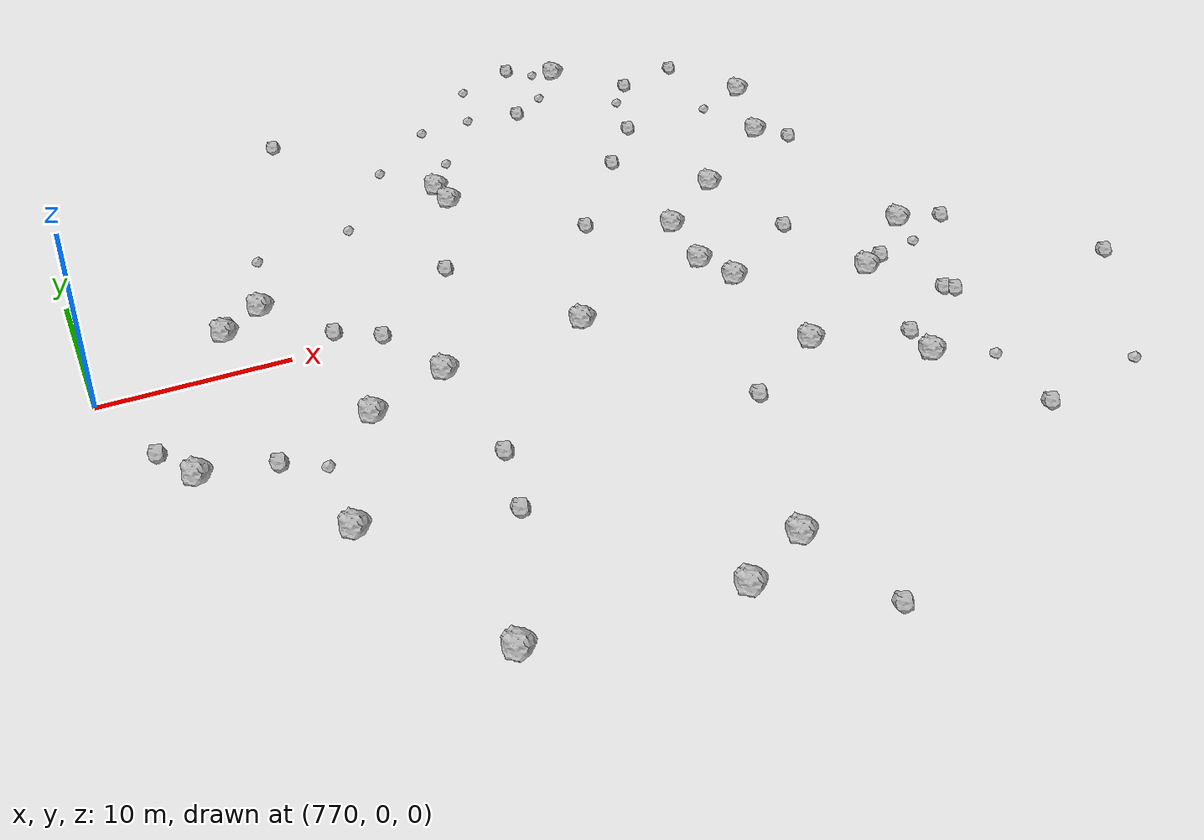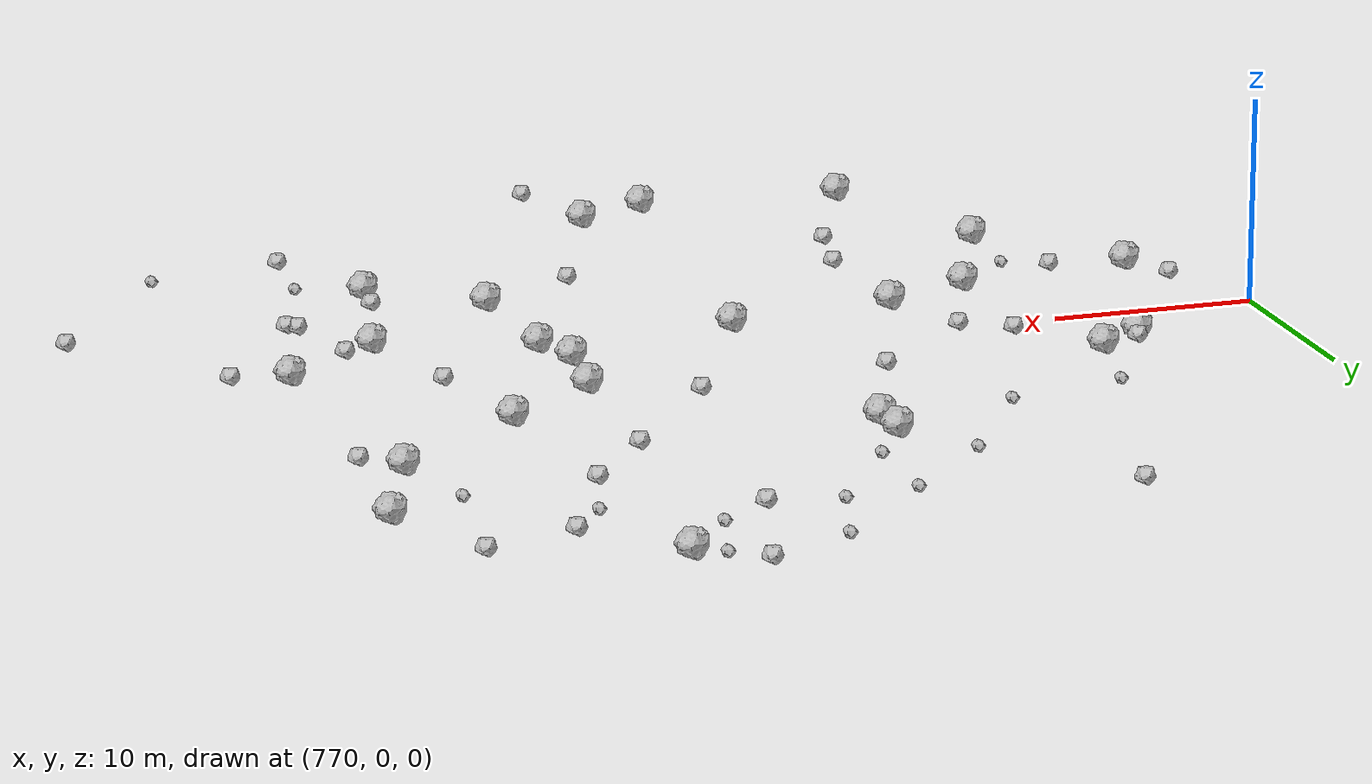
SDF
<sdf version="1.6">
 <world name="default">
  <include><uri>model://sun</uri></include>
  <model name="rock1_20_4">
   <include><uri>model://rock1</uri><pose>796.8662251863695 -23.053370296805426 0.5 0 0 0</pose></include>
  </model>
  <model name="rock1_20_5">
   <include><uri>model://rock1</uri><pose>779.074700048034 -14.38680974998304 0.5 0 0 0</pose></include>
  </model>
  <model name="rock1_20_6">
   <include><uri>model://rock1</uri><pose>817.6290795709427 19.19439994024838 0.5 0 0 0</pose></include>
  </model>
  <model name="rock1_20_7">
   <include><uri>model://rock1</uri><pose>793.0895557834729 14.28596707371264 0.5 0 0 0</pose></include>
  </model>
  <model name="rock1_20_8">
   <include><uri>model://rock1</uri><pose>812.2969936808801 -5.175713496176396 0.5 0 0 0</pose></include>
  </model>
  <model name="rock1_20_9">
   <include><uri>model://rock1</uri><pose>804.4185754912485 3.8448722405870797 0.5 0 0 0</pose></include>
  </model>
  <model name="rock1_20_10">
   <include><uri>model://rock1</uri><pose>793.2351615369157 12.337720911904121 0.5 0 0 0</pose></include>
  </model>
  <model name="rock1_20_11">
   <include><uri>model://rock1</uri><pose>782.3540351388773 -6.666246356700757 0.5 0 0 0</pose></include>
  </model>
  <model name="rock1_20_12">
   <include><uri>model://rock1</uri><pose>782.935261032295 -24.111051271438743 0.5 0 0 0</pose></include>
  </model>
  <model name="rock1_20_13">
   <include><uri>model://rock1</uri><pose>773.4835904346397 -7.779130325598462 0.5 0 0 0</pose></include>
  </model>
  <model name="rock1_20_14">
   <include><uri>model://rock1</uri><pose>793.2081981395507 -24.90410357640846 0.5 0 0 0</pose></include>
  </model>
  <model name="rock1_20_15">
   <include><uri>model://rock1</uri><pose>808.9977999659008 7.5875124721780836 0.5 0 0 0</pose></include>
  </model>
  <model name="rock1_20_16">
   <include><uri>model://rock1</uri><pose>777.2962803176614 3.4582844700571087 0.5 0 0 0</pose></include>
  </model>
  <model name="rock1_20_17">
   <include><uri>model://rock1</uri><pose>805.3766660559827 -10.219776857385263 0.5 0 0 0</pose></include>
  </model>
  <model name="rock1_20_18">
   <include><uri>model://rock1</uri><pose>803.9278534160692 -0.4827079231980953 0.5 0 0 0</pose></include>
  </model>
  <model name="rock1_20_19">
   <include><uri>model://rock1</uri><pose>786.7942516691865 -4.700924657447217 0.5 0 0 0</pose></include>
  </model>
  <model name="rock1_20_20">
   <include><uri>model://rock1</uri><pose>810.5488645285567 -13.829866688501376 0.5 0 0 0</pose></include>
  </model>
  <model name="rock1_20_21">
   <include><uri>model://rock1</uri><pose>817.1143772332643 -1.3154525785190891 0.5 0 0 0</pose></include>
  </model>
  <model name="rock1_20_22">
   <include><uri>model://rock1</uri><pose>806.764585007927 27.375146068971418 0.5 0 0 0</pose></include>
  </model>
  <model name="rock1_20_23">
   <include><uri>model://rock1</uri><pose>779.6479463623006 5.135986435824584 0.5 0 0 0</pose></include>
  </model>
  <model name="rock1_20_24">
   <include><uri>model://rock1</uri><pose>804.8558189219234 -2.9317006187154213 0.5 0 0 0</pose></include>
  </model>
  <model name="rock1_20_25">
   <include><uri>model://rock1</uri><pose>815.4320032844506 12.908293795410131 0.5 0 0 0</pose></include>
  </model>
  <model name="rock1_20_26">
   <include><uri>model://rock1</uri><pose>795.16286775296 -3.4157476310085784 0.5 0 0 0</pose></include>
  </model>
  <model name="rock2_20_0">
   <include><uri>model://rock2</uri><pose>810.6567453423297 -11.63731982845647 0.3 0 0 0</pose></include>
  </model>
  <model name="rock2_20_1">
   <include><uri>model://rock2</uri><pose>819.7604870561173 -1.8966617468793245 0.3 0 0 0</pose></include>
  </model>
  <model name="rock2_20_2">
   <include><uri>model://rock2</uri><pose>782.617212956608 1.2285773580605053 0.3 0 0 0</pose></include>
  </model>
  <model name="rock2_20_3">
   <include><uri>model://rock2</uri><pose>786.2398695427205 -16.179637201758354 0.3 0 0 0</pose></include>
  </model>
  <model name="rock2_20_4">
   <include><uri>model://rock2</uri><pose>814.9539398389751 -8.77071067339195 0.3 0 0 0</pose></include>
  </model>
  <model name="rock2_20_5">
   <include><uri>model://rock2</uri><pose>813.332938074507 -19.852975830458323 0.3 0 0 0</pose></include>
  </model>
  <model name="rock2_20_6">
   <include><uri>model://rock2</uri><pose>810.4416113651888 1.0552932634994292 0.3 0 0 0</pose></include>
  </model>
  <model name="rock2_20_7">
   <include><uri>model://rock2</uri><pose>815.4168641347075 -9.140544281944734 0.3 0 0 0</pose></include>
  </model>
  <model name="rock2_20_8">
   <include><uri>model://rock2</uri><pose>787.1229235231614 -12.038807712148145 0.3 0 0 0</pose></include>
  </model>
  <model name="rock2_20_9">
   <include><uri>model://rock2</uri><pose>785.1384168166301 24.13843905937518 0.3 0 0 0</pose></include>
  </model>
  <model name="rock2_20_10">
   <include><uri>model://rock2</uri><pose>790.2613492250633 4.871606156502402 0.3 0 0 0</pose></include>
  </model>
  <model name="rock2_20_11">
   <include><uri>model://rock2</uri><pose>807.7305550029782 16.91852089232993 0.3 0 0 0</pose></include>
  </model>
  <model name="rock2_20_12">
   <include><uri>model://rock2</uri><pose>777.5285197065006 4.254291540903523 0.3 0 0 0</pose></include>
  </model>
  <model name="rock2_20_13">
   <include><uri>model://rock2</uri><pose>798.4480616282553 -28.44423567374054 0.3 0 0 0</pose></include>
  </model>
  <model name="rock2_20_14">
   <include><uri>model://rock2</uri><pose>817.0321151906768 11.385183238831416 0.3 0 0 0</pose></include>
  </model>
  <model name="rock2_20_15">
   <include><uri>model://rock2</uri><pose>800.4253816143732 -13.169741596058422 0.3 0 0 0</pose></include>
  </model>
  <model name="rock2_20_16">
   <include><uri>model://rock2</uri><pose>813.7386895288315 -4.311780706054261 0.3 0 0 0</pose></include>
  </model>
  <model name="rock2_20_17">
   <include><uri>model://rock2</uri><pose>777.163502184267 -8.3897389969691 0.3 0 0 0</pose></include>
  </model>
  <model name="rock2_20_18">
   <include><uri>model://rock2</uri><pose>784.8872079506426 -0.17134815638602774 0.3 0 0 0</pose></include>
  </model>
  <model name="rock2_20_19">
   <include><uri>model://rock2</uri><pose>772.0792003062858 -5.305366705056063 0.3 0 0 0</pose></include>
  </model>
  <model name="rock2_20_20">
   <include><uri>model://rock2</uri><pose>825.9207050955213 -9.380400504597613 0.3 0 0 0</pose></include>
  </model>
  <model name="rock2_20_21">
   <include><uri>model://rock2</uri><pose>810.5470221437948 23.328726325922553 0.3 0 0 0</pose></include>
  </model>
  <model name="rock2_20_22">
   <include><uri>model://rock2</uri><pose>803.7974103240224 29.23390040707043 0.3 0 0 0</pose></include>
  </model>
  <model name="rock2_20_23">
   <include><uri>model://rock2</uri><pose>799.5910110351359 5.998254049717886 0.3 0 0 0</pose></include>
  </model>
  <model name="rock2_20_24">
   <include><uri>model://rock2</uri><pose>804.5804336923944 12.787981838761311 0.3 0 0 0</pose></include>
  </model>
  <model name="rock2_20_25">
   <include><uri>model://rock2</uri><pose>801.7754805568676 22.20363239986665 0.3 0 0 0</pose></include>
  </model>
  <model name="rock2_20_26">
   <include><uri>model://rock2</uri><pose>814.895696051226 24.735080812833843 0.3 0 0 0</pose></include>
  </model>
  <model name="rock3_20_0">
   <include><uri>model://rock3</uri><pose>799.6436076225541 27.096541326026895 0.2 0 0 0</pose></include>
  </model>
  <model name="rock3_20_1">
   <include><uri>model://rock3</uri><pose>794.783626454728 17.241666870063753 0.2 0 0 0</pose></include>
  </model>
  <model name="rock3_20_2">
   <include><uri>model://rock3</uri><pose>816.4756045995637 -3.7570888526890265 0.2 0 0 0</pose></include>
  </model>
  <model name="rock3_20_3">
   <include><uri>model://rock3</uri><pose>808.8579027244297 20.99670969204297 0.2 0 0 0</pose></include>
  </model>
  <model name="rock3_20_4">
   <include><uri>model://rock3</uri><pose>779.2058546444182 -9.614629638052858 0.2 0 0 0</pose></include>
  </model>
  <model name="rock3_20_5">
   <include><uri>model://rock3</uri><pose>794.8071080618454 22.12138935968504 0.2 0 0 0</pose></include>
  </model>
  <model name="rock3_20_6">
   <include><uri>model://rock3</uri><pose>798.3059690433599 22.62542892179618 0.2 0 0 0</pose></include>
  </model>
  <model name="rock3_20_7">
   <include><uri>model://rock3</uri><pose>804.2063660917304 24.015882574607687 0.2 0 0 0</pose></include>
  </model>
  <model name="rock3_20_8">
   <include><uri>model://rock3</uri><pose>786.5046662596611 11.49270010123817 0.2 0 0 0</pose></include>
  </model>
  <model name="rock3_20_9">
   <include><uri>model://rock3</uri><pose>813.9472387234011 17.535213863335684 0.2 0 0 0</pose></include>
  </model>
  <model name="rock3_20_10">
   <include><uri>model://rock3</uri><pose>813.5179426097504 -15.29756233257288 0.2 0 0 0</pose></include>
  </model>
  <model name="rock3_20_11">
   <include><uri>model://rock3</uri><pose>780.6772510806857 10.174219094350285 0.2 0 0 0</pose></include>
  </model>
  <model name="rock3_20_12">
   <include><uri>model://rock3</uri><pose>805.2918551060644 27.868894880230272 0.2 0 0 0</pose></include>
  </model>
  <model name="rock3_20_13">
   <include><uri>model://rock3</uri><pose>819.8694590089489 -18.6345848041368 0.2 0 0 0</pose></include>
  </model>
  <model name="rock3_20_14">
   <include><uri>model://rock3</uri><pose>790.4376977589382 17.684781664730792 0.2 0 0 0</pose></include>
  </model>
 </world>
</sdf>
